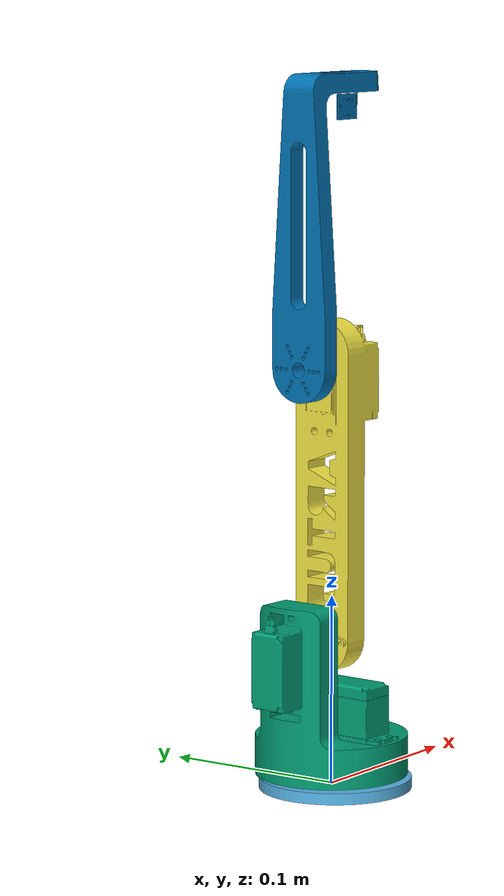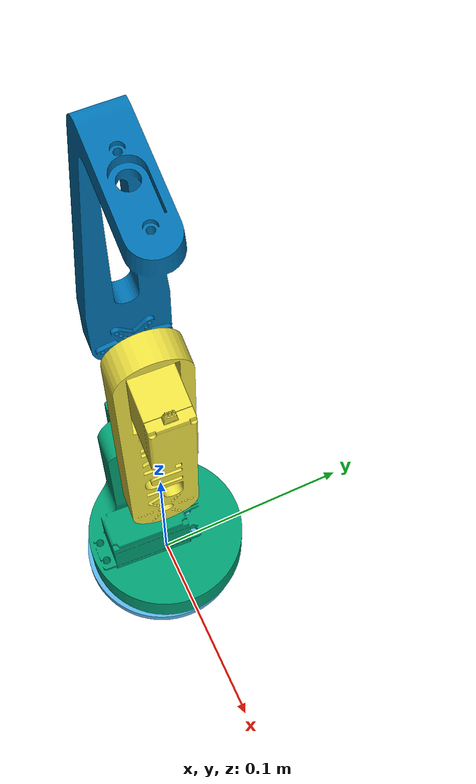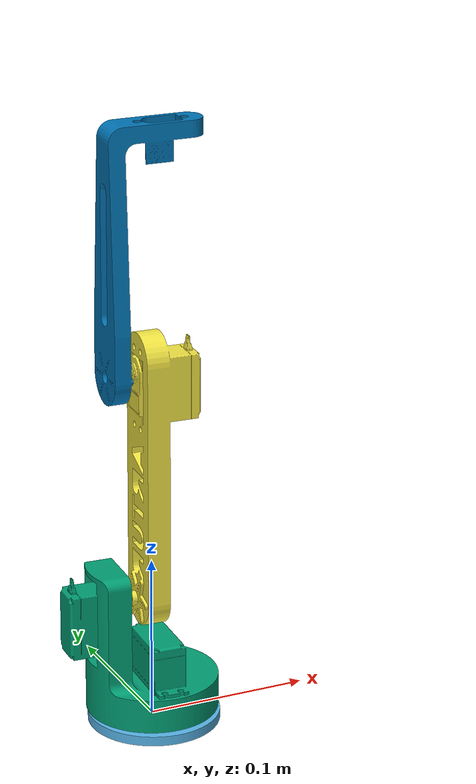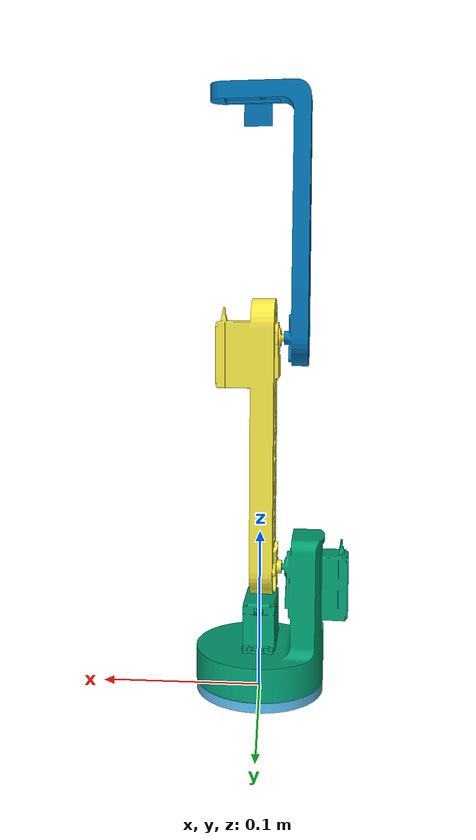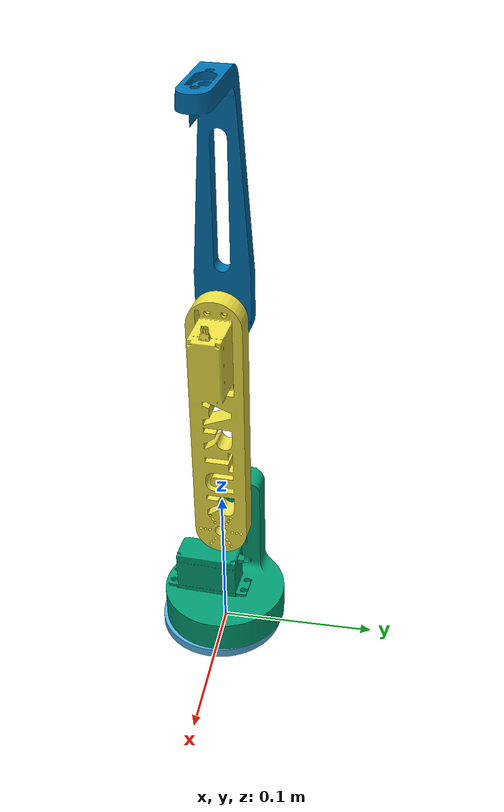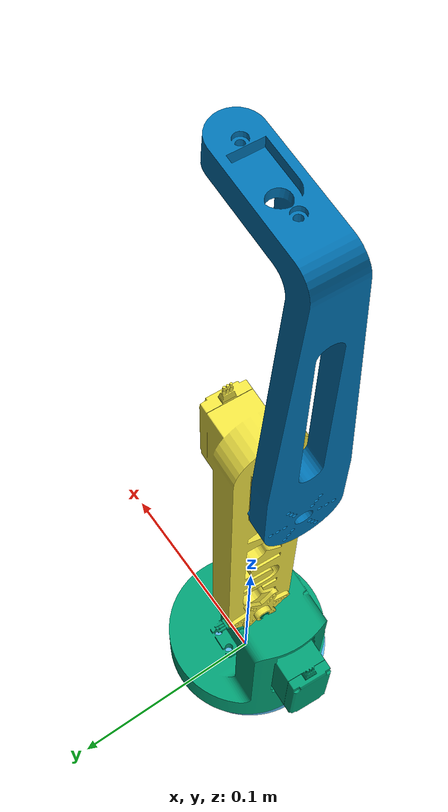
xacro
<?xml version="1.0"?>
<robot name="Robot" xmlns:xacro="http://www.ros.org/wiki/xacro">

<xacro:include filename="$(find bracorobotico)/urdf/materials.xacro" />
<xacro:include filename="$(find bracorobotico)/urdf/Robot.trans" />
<xacro:include filename="$(find bracorobotico)/urdf/Robot.gazebo" />

<link name= "world"/>

<link name="base_link">
  <inertial>
    <origin xyz="2.4437591469766973e-13 -0.0023935207808241025 0.002072474625176658" rpy="0 0 0"/>
    <mass value="0.25512324146388743"/>
    <inertia ixx="9.7e-05" iyy="9.7e-05" izz="0.000192" ixy="-0.0" iyz="-0.0" ixz="0.0"/>
  </inertial>
  <visual>
    <origin xyz="0 0 0" rpy="0 0 0"/>
    <geometry>
      <mesh filename="package://bracorobotico/meshes/base_link.stl" scale="0.001 0.001 0.001"/>
    </geometry>
  </visual>
  <collision>
    <origin xyz="0 0 0" rpy="0 0 0"/>
    <geometry>
      <mesh filename="package://bracorobotico/meshes/base_link.stl" scale="0.001 0.001 0.001"/>
    </geometry>
  </collision>
</link>

<link name="base_1">
  <inertial>
    <origin xyz="-0.013574674116284137 -0.0032203531974283354 0.040188161808609756" rpy="0 0 0"/>
    <mass value="1.1206140871556318"/>
    <inertia ixx="0.001002" iyy="0.001242" izz="0.000901" ixy="2.6e-05" iyz="1e-06" ixz="0.000342"/>
  </inertial>
  <visual>
    <origin xyz="0.0 0.002394 0.0015" rpy="0 0 0"/>
    <geometry>
      <mesh filename="package://bracorobotico/meshes/base_1.stl" scale="0.001 0.001 0.001"/>
    </geometry>
  </visual>
  <collision>
    <origin xyz="0.0 0.002394 0.0015" rpy="0 0 0"/>
    <geometry>
      <mesh filename="package://bracorobotico/meshes/base_1.stl" scale="0.001 0.001 0.001"/>
    </geometry>
  </collision>
</link>

<link name="elo1_1">
  <inertial>
    <origin xyz="0.012267169795555281 0.030859759313971585 0.055839168523822244" rpy="0 0 0"/>
    <mass value="0.6855797516111669"/>
    <inertia ixx="0.001955" iyy="0.001946" izz="0.000114" ixy="-0.0" iyz="-4e-06" ixz="-0.000109"/>
  </inertial>
  <visual>
    <origin xyz="0.0102 0.033363 -0.10797" rpy="0 0 0"/>
    <geometry>
      <mesh filename="package://bracorobotico/meshes/elo1_1.stl" scale="0.001 0.001 0.001"/>
    </geometry>
  </visual>
  <collision>
    <origin xyz="0.0102 0.033363 -0.10797" rpy="0 0 0"/>
    <geometry>
      <mesh filename="package://bracorobotico/meshes/elo1_1.stl" scale="0.001 0.001 0.001"/>
    </geometry>
  </collision>
</link>

<link name="elo2_1">
  <inertial>
    <origin xyz="-0.0030293603719406363 0.030333139890871524 0.03778439091393071" rpy="0 0 0"/>
    <mass value="0.34482683449061696"/>
    <inertia ixx="0.00106" iyy="0.001086" izz="7.9e-05" ixy="-0.0" iyz="0.0" ixz="-0.000114"/>
  </inertial>
  <visual>
    <origin xyz="0.0159 0.033363 -0.25097" rpy="0 0 0"/>
    <geometry>
      <mesh filename="package://bracorobotico/meshes/elo2_1.stl" scale="0.001 0.001 0.001"/>
    </geometry>
  </visual>
  <collision>
    <origin xyz="0.0159 0.033363 -0.25097" rpy="0 0 0"/>
    <geometry>
      <mesh filename="package://bracorobotico/meshes/elo2_1.stl" scale="0.001 0.001 0.001"/>
    </geometry>
  </collision>
</link>

<joint name="base_joint" type="fixed">
  <origin xyz = "0.0 0.0 0.0" rpy="0.0 0.0 0.0"/>
  <parent link ="world"/>
  <child link="base_link"/>

  </joint>

<joint name="Revolucionar1" type="revolute">
  <origin xyz="0.0 0.0 0.0" rpy="0 0 0"/>
  <parent link="base_link"/>
  <child link="base_1"/>
  <axis xyz="-0.0 -0.0 -1.0"/>
  <limit lower="-1.73" upper="1.73" effort="10" velocity="0.5"/>

</joint>

<joint name="Revolucionar2" type="revolute">
  <origin xyz="-0.0102 -0.030969 0.10947" rpy="0 0 0"/>
  <parent link="base_1"/>
  <child link="elo1_1"/>
  <axis xyz="-1.0 0.0 -0.0"/>
  <limit lower="-1.73" upper="1.73" effort="10" velocity="0.5"/>

</joint>

<joint name="Revolucionar3" type="revolute">
  <origin xyz="-0.0057 0.0 0.143" rpy="0 0 0"/>
  <parent link="elo1_1"/>
  <child link="elo2_1"/>
  <axis xyz="1.0 -0.0 0.0"/>
  <limit lower="-1.73" upper="1.73" effort="10" velocity="0.5"/>

</joint>

</robot>
